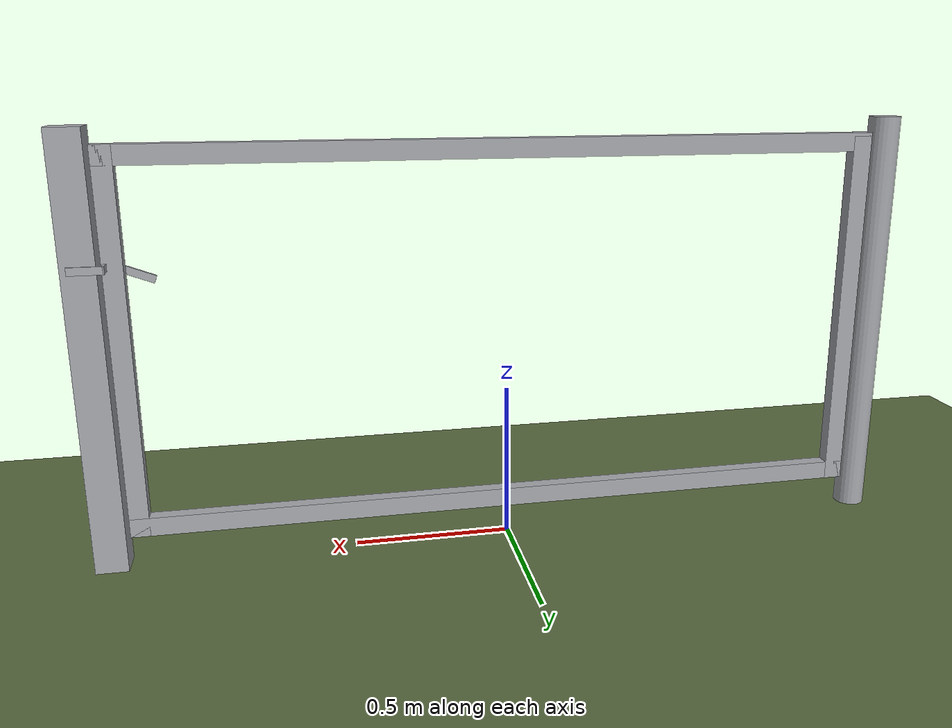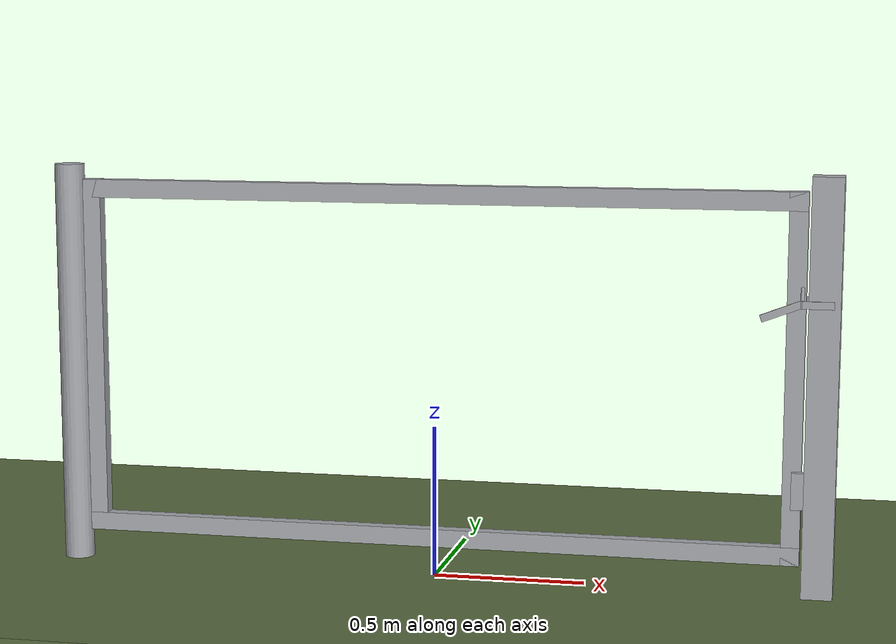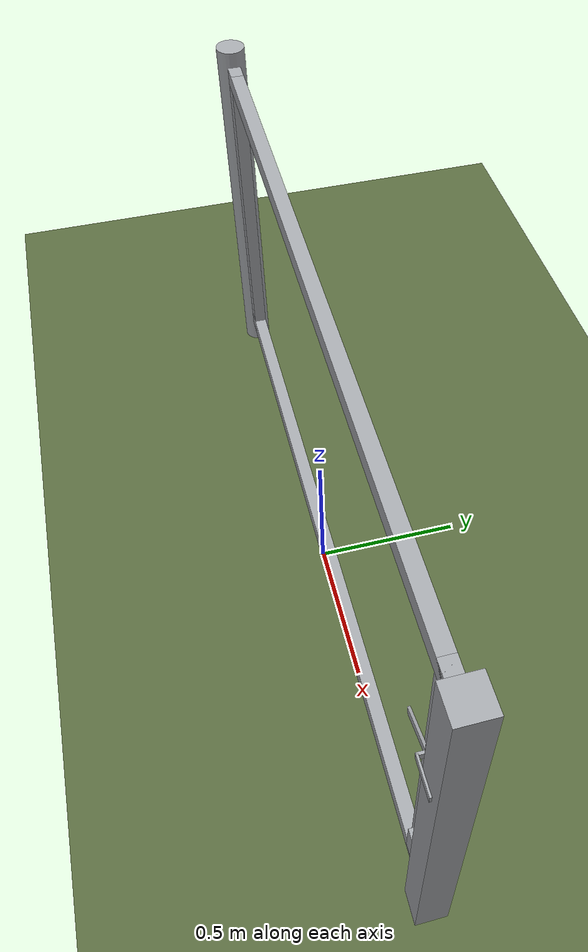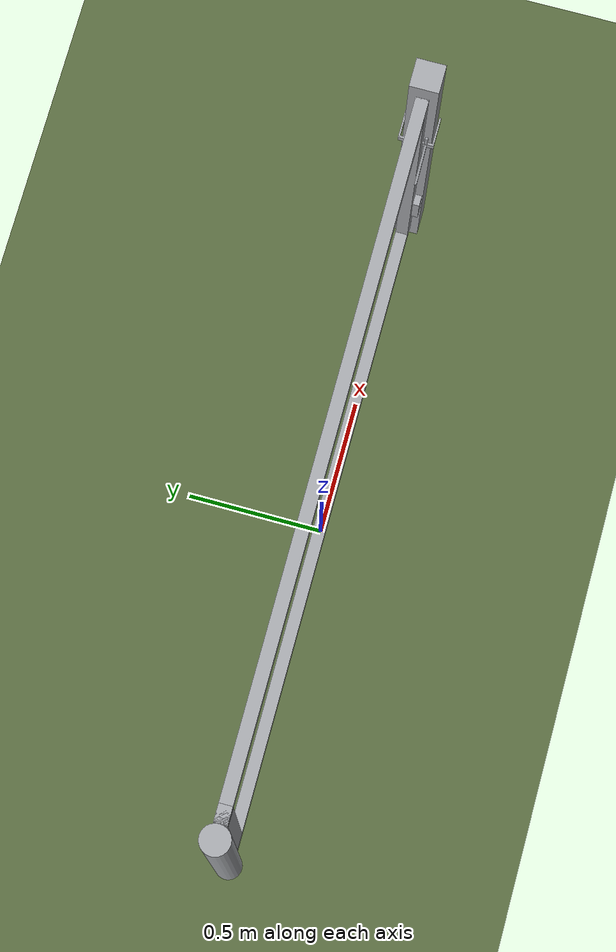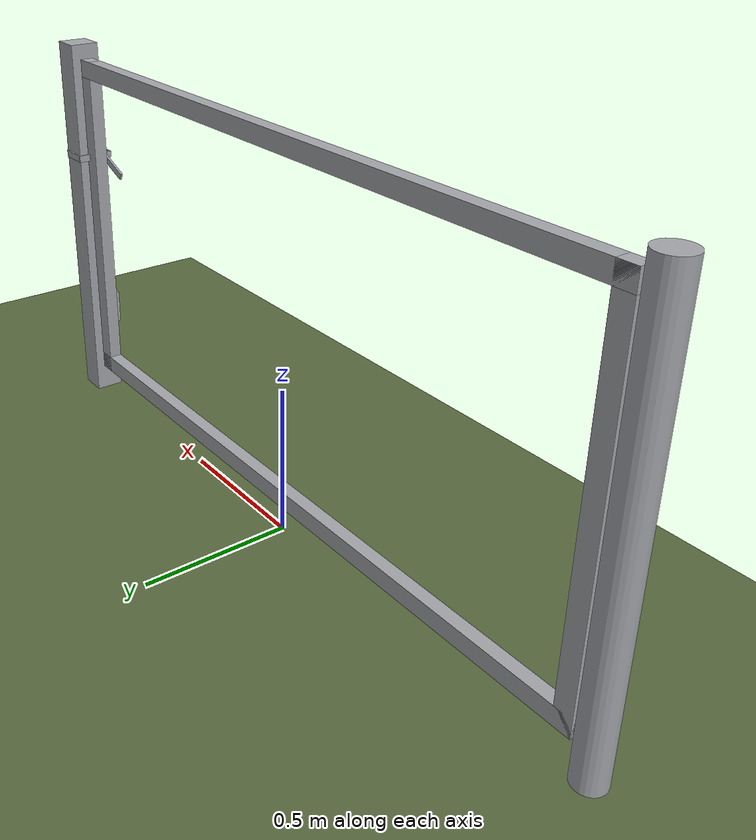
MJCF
<?xml version="1.0" ?>
<mujoco model="db0776_gate_swing_minimal">
  <compiler angle="radian" meshdir="../../hardware" texturedir="../../textures" autolimits="true" inertiafromgeom="false"/>
  <option timestep="0.002" integrator="implicitfast" cone="elliptic" impratio="10" noslip_iterations="3">
    <flag multiccd="enable"/>
  </option>
  <size memory="16M"/>
  <default>
    <geom condim="4" solref="0.005 1" solimp="0.95 0.99 0.001"/>
    <joint solreflimit="0.005 1" solimplimit="0.95 0.99 0.001"/>
    <tendon solreflimit="0.005 1"/>
    <equality solref="0.002 1"/>
  </default>
  <visual>
    <headlight ambient="0.4 0.4 0.4" diffuse="0.7 0.7 0.7" specular="0.2 0.2 0.2"/>
    <quality shadowsize="4096"/>
    <map znear="0.01" zfar="60"/>
  </visual>
  <asset>
    <material name="mat_floor" rgba="0.35 0.42 0.25 1" specular="0.2" shininess="0.15" reflectance="0"/>
    <material name="mat_wall" rgba="0.78 0.76 0.7 1" specular="0.2" shininess="0.1" reflectance="0"/>
    <material name="mat_leaf" rgba="0.65 0.66 0.68 1" specular="0.74" shininess="0.5" reflectance="0.36"/>
    <material name="mat_hinge" rgba="0.65 0.66 0.68 1" specular="0.74" shininess="0.5" reflectance="0.36"/>
    <material name="mat_op_steel_galvanized" rgba="0.65 0.66 0.68 1" specular="0.74" shininess="0.5" reflectance="0.36"/>
    <material name="mat_frame" rgba="0.65 0.66 0.68 1" specular="0.74" shininess="0.5" reflectance="0.36"/>
    <material name="mat_fence" rgba="0.7 0.45 0.32 1" specular="0.2" shininess="0.4" reflectance="0"/>
    <texture name="skybox" type="skybox" builtin="gradient" rgb1="0.6 0.7 0.85" rgb2="0.9 0.92 0.95" width="256" height="256"/>
  </asset>
  <worldbody>
    <light name="sun" pos="1.5 -2.5 4" dir="-0.3 0.5 -0.8" directional="true" diffuse="0.8 0.8 0.8" specular="0.3 0.3 0.3" castshadow="true"/>
    <light name="fill" pos="-1.5 2.5 3" dir="0.3 -0.5 -0.7" directional="true" diffuse="0.35 0.35 0.4" castshadow="false"/>
    <camera name="robot_view" pos="0 -2.88625 1.41815" xyaxes="1 0 0 0 0.26963 0.962964" fovy="52"/>
    <camera name="far_view" pos="0 2.88625 1.41815" xyaxes="-1 0 0 0 -0.26963 0.962964" fovy="52"/>
    <camera name="iso" pos="2.19355 -2.42445 1.87995" xyaxes="0.741536 0.670913 0 -0.242917 0.268487 0.932151" fovy="46"/>
    <camera name="detail_handle" pos="1.366 -0.8345 1.285" xyaxes="0.97561 0.219512 0 -0.070934 0.315262 0.94635" fovy="38"/>
    <geom name="floor" type="box" size="6 6 0.05" pos="0 0 -0.05" material="mat_floor" group="0" contype="1" conaffinity="1" friction="0.8 0.005 0.0001" density="2400"/>
    <geom name="post_hinge" type="cylinder" size="0.05 0.675" pos="-1.256 0 0.675" material="mat_frame" group="0" contype="1" conaffinity="1" friction="0.6 0.005 0.0001" density="800"/>
    <geom name="post_latch" type="box" size="0.05 0.05 0.675" pos="1.256 0 0.675" material="mat_frame" group="0" contype="1" conaffinity="1" friction="0.6 0.005 0.0001" density="800"/>
    <geom name="gate_stop" type="box" size="0.02 0.012 0.06" pos="1.186 -0.0345 0.35" material="mat_frame" group="0" contype="1" conaffinity="1" friction="0.6 0.005 0.0001" density="800"/>
    <site name="approach_point" pos="0 -1.5 0" quat="1 0 0 0" size="0.05" rgba="0.2 0.9 0.2 0.5" group="4"/>
    <site name="goal_point" pos="0 1.5 0" quat="1 0 0 0" size="0.05" rgba="0.2 0.9 0.2 0.5" group="4"/>
    <site name="door_plane_center" pos="0 0 0.61" quat="1 0 0 0" size="0.02" rgba="0.2 0.9 0.2 0.5" group="4"/>
    <body name="leaf" pos="-1.206 0 0">
      <inertial pos="1.203 0 0.7" mass="39.345037" quat="0 0 0.707107 0.707107" diaginertia="4.730816391 18.898264268 23.615801709"/>
      <joint name="leaf_hinge" type="hinge" axis="0 0 1" pos="0.003 0.05 0" limited="true" range="0 1.745329" damping="7.240249" frictionloss="4.144449" armature="0.02"/>
      <geom name="leaf_slab_col" type="box" size="1.2 0.0225 0.6" pos="1.203 0 0.7" material="mat_leaf" group="3" contype="1" conaffinity="1" rgba="0.8 0.3 0.3 0.25" friction="0.42 0.005 0.0001" density="1"/>
      <geom name="leaf_rail_b" type="box" size="1.2 0.0225 0.03" pos="1.203 0 0.13" material="mat_leaf" group="1" contype="0" conaffinity="0" density="1"/>
      <geom name="leaf_rail_t" type="box" size="1.2 0.0225 0.03" pos="1.203 0 1.27" material="mat_leaf" group="1" contype="0" conaffinity="0" density="1"/>
      <geom name="leaf_stile_h" type="box" size="0.03 0.0225 0.6" pos="0.033 0 0.7" material="mat_leaf" group="1" contype="0" conaffinity="0" density="1"/>
      <geom name="leaf_stile_l" type="box" size="0.03 0.0225 0.6" pos="2.373 0 0.7" material="mat_leaf" group="1" contype="0" conaffinity="0" density="1"/>
      <site name="leaf_edge_mid" pos="2.403 0 0.6" quat="1 0 0 0" size="0.02" rgba="0.2 0.9 0.2 0.5" group="4"/>
      <body name="leaf_fork" pos="2.263 0 0.9">
        <inertial pos="0.125752 -0.012931 0.043882" mass="0.210369" quat="0.971136 -0.03359 -0.115609 0.205917" diaginertia="0.000359655 0.000739886 0.001026496"/>
        <joint name="leaf_fork_hinge" type="hinge" axis="0 -1 0" limited="true" range="0 1.2" damping="0.037477" frictionloss="0.006367" armature="0.0001"/>
        <geom name="leaf_fork_arm" type="box" size="0.069176 0.004 0.012" pos="0.0645 -0.0345 0.025" quat="0.982958 0 -0.183833 0" material="mat_op_steel_galvanized" group="0" contype="1" conaffinity="1" friction="0.6 0.005 0.0001" density="2500"/>
        <geom name="leaf_fork_tine_n" type="box" size="0.05 0.003 0.012" pos="0.179 -0.059 0.05" material="mat_op_steel_galvanized" group="0" contype="1" conaffinity="1" friction="0.6 0.005 0.0001" density="2500"/>
        <geom name="leaf_fork_tine_p" type="box" size="0.05 0.003 0.012" pos="0.179 0.059 0.05" material="mat_op_steel_galvanized" group="0" contype="1" conaffinity="1" friction="0.6 0.005 0.0001" density="2500"/>
        <geom name="leaf_fork_bridge" type="box" size="0.004 0.062 0.012" pos="0.129 0 0.05" material="mat_op_steel_galvanized" group="0" contype="1" conaffinity="1" friction="0.6 0.005 0.0001" density="2500"/>
        <geom name="leaf_fork_handle" type="capsule" size="0.006 0.018" pos="0.129 -0.0345 0.08" material="mat_op_steel_galvanized" group="0" contype="1" conaffinity="1" friction="0.7 0.01 0.0001" density="2500"/>
        <site name="leaf_fork_grip" pos="0.129 -0.0345 0.105" quat="1 0 0 0" size="0.012" rgba="0.2 0.9 0.2 0.5" group="4"/>
      </body>
    </body>
  </worldbody>
  <sensor>
    <jointpos name="leaf_hinge_pos" joint="leaf_hinge"/>
    <jointvel name="leaf_hinge_vel" joint="leaf_hinge"/>
    <jointpos name="leaf_fork_hinge_pos" joint="leaf_fork_hinge"/>
    <jointvel name="leaf_fork_hinge_vel" joint="leaf_fork_hinge"/>
  </sensor>
</mujoco>
